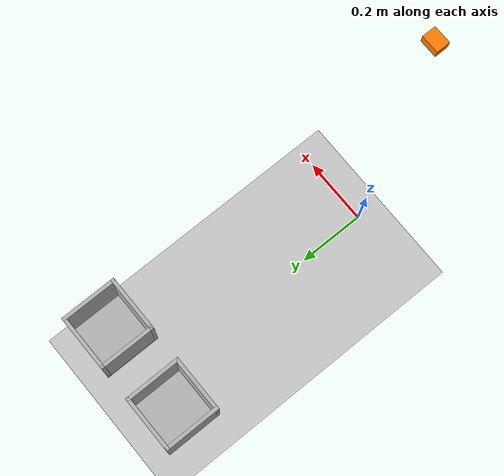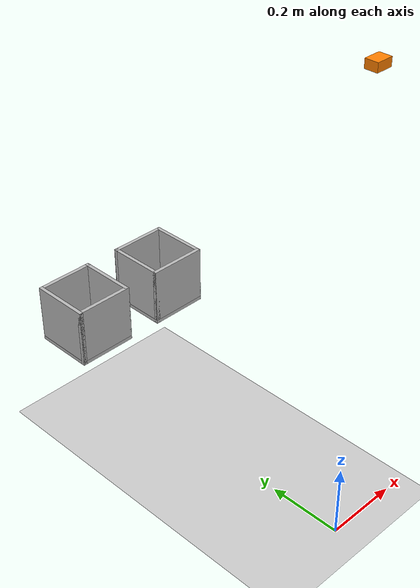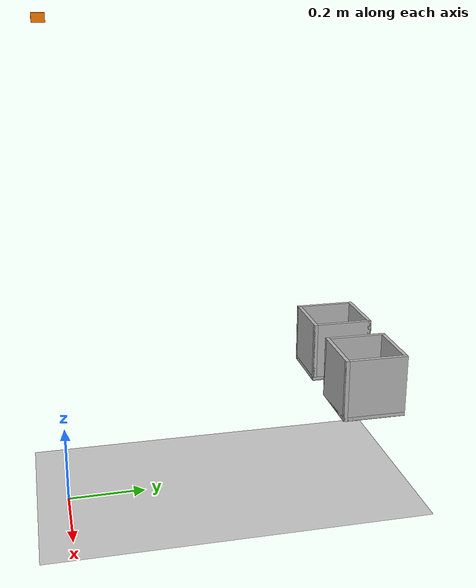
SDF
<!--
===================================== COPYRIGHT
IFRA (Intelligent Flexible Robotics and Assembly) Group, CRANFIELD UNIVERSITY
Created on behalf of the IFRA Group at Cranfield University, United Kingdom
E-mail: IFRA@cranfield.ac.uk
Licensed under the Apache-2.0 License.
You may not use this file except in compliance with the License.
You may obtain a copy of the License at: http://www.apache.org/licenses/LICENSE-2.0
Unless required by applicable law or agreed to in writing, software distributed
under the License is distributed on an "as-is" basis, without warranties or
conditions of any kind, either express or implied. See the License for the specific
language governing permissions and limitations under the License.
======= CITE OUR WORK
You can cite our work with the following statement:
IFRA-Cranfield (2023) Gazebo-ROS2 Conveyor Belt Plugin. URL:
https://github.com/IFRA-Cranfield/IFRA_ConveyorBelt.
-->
<sdf version="1.4">
 <world name="default">
  <gravity>0 0 -9.8</gravity>
  <include><uri>model://ground_plane</uri></include>
  <include><uri>model://sun</uri></include>
  <scene><shadows>0</shadows></scene>
  <include><name>overhead_cam</name><uri>model://overhead_camera</uri></include>
  <include><name>bin_1</name><uri>model://jn_crate</uri><pose>0.125 0.75 0.25 0 0 0</pose></include>
  <include><name>bin_2</name><uri>model://jn_crate</uri><pose>-0.125 0.75 0.25 0 0 0</pose></include>
 </world>
</sdf>

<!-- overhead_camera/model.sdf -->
<sdf version="1.4">
  <model name="overhead_camera">
    <static>true</static>
    <pose>0 0 1.2  0 1.5708 0</pose>

    <link name="camera_link">
      <visual name="cam_vis">
        <geometry><box><size>0.02 0.03 0.04</size></box></geometry>
        <material>
          <ambient>1.0 0.5 0.0 1</ambient>
          <diffuse>1.0 0.5 0.0 1</diffuse>
        </material>
      </visual>

      <sensor name="conveyor_camera" type="camera">
        <always_on>true</always_on>
        <update_rate>30</update_rate>

        <camera>
          <horizontal_fov>1.396</horizontal_fov>
          <image>
            <width>640</width>
            <height>480</height>
            <format>R8G8B8</format>
          </image>
          <clip><near>0.02</near><far>20</far></clip>
        </camera>

        <plugin name="gazebo_ros_camera" filename="libgazebo_ros_camera.so">
          <always_publish>true</always_publish>
          <robotNamespace>/</robotNamespace>
          <camera_name>camera</camera_name>
          <frame_name>camera_link</frame_name>
          <image_topic_name>image_raw</image_topic_name>
          <camera_info_topic_name>camera_info</camera_info_topic_name>
        </plugin>
      </sensor>
    </link>
  </model>
</sdf>

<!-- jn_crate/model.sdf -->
<sdf version='1.7'>
  <model name='jn_crate'>
    <link name="crate_bottom">
      <pose>0 0 0.005 0 0 0</pose>
      <visual name="bottom_visual">
        <geometry>
          <box>
            <size>0.16 0.16 0.01</size>
          </box>
        </geometry>
      </visual>
      <collision name="bottom_collision">
        <geometry>
          <box>
            <size>0.16 0.16 0.01</size>
          </box>
        </geometry>
      </collision>
      <inertial>
        <mass>1</mass>
        <inertia>
          <ixx>0.01</ixx>
          <ixy>0</ixy>
          <ixz>0</ixz>
          <iyy>0.01</iyy>
          <iyz>0</iyz>
          <izz>0.01</izz>
        </inertia>
      </inertial>
    </link>

    <link name="crate_wall_1">
      <pose>0.075 0 0.08 0 0 0</pose>
      <visual name="wall1_visual">
        <geometry>
          <box>
            <size>0.01 0.16 0.16</size>
          </box>
        </geometry>
      </visual>
      <collision name="wall1_collision">
        <geometry>
          <box>
            <size>0.01 0.16 0.16</size>
          </box>
        </geometry>
      </collision>
      <inertial>
        <mass>1</mass>
        <inertia>
          <ixx>0.01</ixx>
          <ixy>0</ixy>
          <ixz>0</ixz>
          <iyy>0.01</iyy>
          <iyz>0</iyz>
          <izz>0.01</izz>
        </inertia>
      </inertial>
    </link>

    <link name="crate_wall_2">
      <pose>-0.075 0 0.08 0 0 0</pose>
      <visual name="wall2_visual">
        <geometry>
          <box>
            <size>0.01 0.16 0.16</size>
          </box>
        </geometry>
      </visual>
      <collision name="wall2_collision">
        <geometry>
          <box>
            <size>0.01 0.16 0.16</size>
          </box>
        </geometry>
      </collision>
      <inertial>
        <mass>1</mass>
        <inertia>
          <ixx>0.01</ixx>
          <ixy>0</ixy>
          <ixz>0</ixz>
          <iyy>0.01</iyy>
          <iyz>0</iyz>
          <izz>0.01</izz>
        </inertia>
      </inertial>
    </link>

    <link name="crate_wall_3">
      <pose>0 0.075 0.08 0 0 0</pose>
      <visual name="wall3_visual">
        <geometry>
          <box>
            <size>0.16 0.01 0.16</size>
          </box>
        </geometry>
      </visual>
      <collision name="wall3_collision">
        <geometry>
          <box>
            <size>0.16 0.01 0.16</size>
          </box>
        </geometry>
      </collision>
      <inertial>
        <mass>1</mass>
        <inertia>
          <ixx>0.01</ixx>
          <ixy>0</ixy>
          <ixz>0</ixz>
          <iyy>0.01</iyy>
          <iyz>0</iyz>
          <izz>0.01</izz>
        </inertia>
      </inertial>
    </link>

    <link name="crate_wall_4">
      <pose>0 -0.075 0.08 0 0 0</pose>
      <visual name="wall4_visual">
        <geometry>
          <box>
            <size>0.16 0.01 0.16</size>
          </box>
        </geometry>
      </visual>
      <collision name="wall4_collision">
        <geometry>
          <box>
            <size>0.16 0.01 0.16</size>
          </box>
        </geometry>
      </collision>
      <inertial>
        <mass>1</mass>
        <inertia>
          <ixx>0.01</ixx>
          <ixy>0</ixy>
          <ixz>0</ixz>
          <iyy>0.01</iyy>
          <iyz>0</iyz>
          <izz>0.01</izz>
        </inertia>
      </inertial>
    </link>

    <joint name='wall_joint_1' type='fixed'>
      <parent>crate_bottom</parent>
      <child>crate_wall_1</child>
    </joint>

    <joint name='wall_joint_2' type='fixed'>
      <parent>crate_bottom</parent>
      <child>crate_wall_2</child>
    </joint>

    <joint name='wall_joint_3' type='fixed'>
      <parent>crate_bottom</parent>
      <child>crate_wall_3</child>
    </joint>

    <joint name='wall_joint_4' type='fixed'>
      <parent>crate_bottom</parent>
      <child>crate_wall_4</child>
    </joint>

    <static>false</static>
    <allow_auto_disable>true</allow_auto_disable>
  </model>
</sdf>
